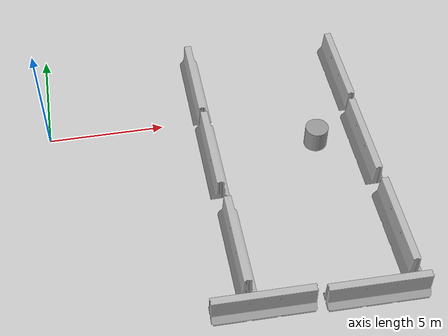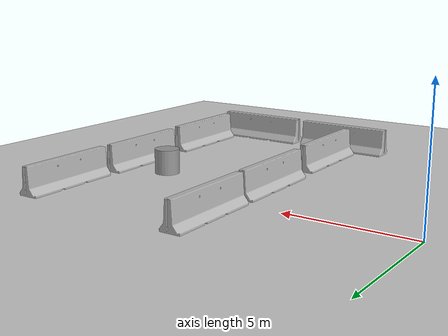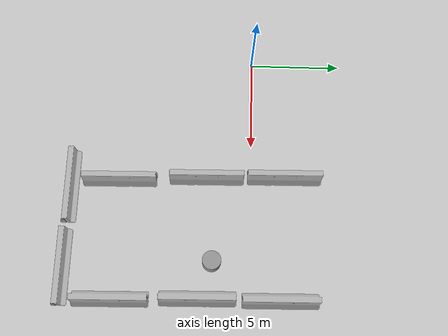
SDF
<sdf version="1.7">
 <world name="default">
  <light name="sun" type="directional">
   <pose>0 0 10 0 -0 0</pose>
   <diffuse>0.8 0.8 0.8 1</diffuse>
   <specular>0.2 0.2 0.2 1</specular>
   <attenuation>
    <range>1000</range>
    <constant>0.9</constant>
    <linear>0.01</linear>
    <quadratic>0.001</quadratic>
   </attenuation>
   <direction>-0.5 0.1 -0.9</direction>
   <spot><inner_angle>0</inner_angle><outer_angle>0</outer_angle><falloff>0</falloff></spot>
  </light>
  <model name="ground_plane">
   <static>1</static>
   <link name="link">
    <collision name="collision">
     <geometry><plane><normal>0 0 1</normal><size>100 100</size></plane></geometry>
     <surface><friction><ode><mu>100</mu><mu2>50</mu2></ode></friction></surface>
    </collision>
    <visual name="visual">
     <cast_shadows>0</cast_shadows>
     <geometry><plane><normal>0 0 1</normal><size>100 100</size></plane></geometry>
     <material>
      <script><uri>file://media/materials/scripts/gazebo.material</uri><name>Gazebo/Grey</name></script>
     </material>
    </visual>
   </link>
  </model>
  <gravity>0 0 -9.8</gravity>
  <magnetic_field>6e-06 2.3e-05 -4.2e-05</magnetic_field>
  <atmosphere type="adiabatic"/>
  <physics name="default_physics" default="0" type="ode">
   <max_step_size>0.001</max_step_size>
   <real_time_factor>1</real_time_factor>
   <real_time_update_rate>1000</real_time_update_rate>
  </physics>
  <scene><ambient>0.4 0.4 0.4 1</ambient><background>0.7 0.7 0.7 1</background><shadows>1</shadows></scene>
  <audio><device>default</device></audio>
  <spherical_coordinates>
   <surface_model>EARTH_WGS84</surface_model>
   <latitude_deg>0</latitude_deg>
   <longitude_deg>0</longitude_deg>
   <elevation>0</elevation>
   <heading_deg>0</heading_deg>
  </spherical_coordinates>
  <model name="jersey_barrier">
   <static>1</static>
   <link name="link">
    <visual name="visual">
     <geometry><mesh><uri>model://jersey_barrier/meshes/jersey_barrier.dae</uri></mesh></geometry>
    </visual>
    <collision name="upright">
     <pose>0 0 0.5715 0 -0 0</pose>
     <geometry><box><size>4.06542 0.3063 1.143</size></box></geometry>
    </collision>
    <collision name="base">
     <pose>0 0 0.032258 0 -0 0</pose>
     <geometry><box><size>4.06542 0.8107 0.064516</size></box></geometry>
    </collision>
    <collision name="base2">
     <pose>0 0 0.1 0 -0 0</pose>
     <geometry><box><size>4.06542 0.65 0.1</size></box></geometry>
    </collision>
    <collision name="base3">
     <pose>0 0 0.2 0 -0 0</pose>
     <geometry><box><size>4.06542 0.5 0.1</size></box></geometry>
    </collision>
    <collision name="left-angle">
     <pose>0 -0.224 0.2401 0.9 -0 0</pose>
     <geometry><box><size>4.06542 0.5 0.064516</size></box></geometry>
    </collision>
    <collision name="right-angle">
     <pose>0 0.224 0.2401 -0.9 0 0</pose>
     <geometry><box><size>4.06542 0.5 0.064516</size></box></geometry>
    </collision>
   </link>
   <pose>6.76324 1.84062 0 0 -0 1.58479</pose>
  </model>
  <model name="jersey_barrier_clone">
   <static>1</static>
   <link name="link">
    <visual name="visual">
     <geometry><mesh><uri>model://jersey_barrier/meshes/jersey_barrier.dae</uri></mesh></geometry>
    </visual>
    <collision name="upright">
     <pose>0 0 0.5715 0 -0 0</pose>
     <geometry><box><size>4.06542 0.3063 1.143</size></box></geometry>
    </collision>
    <collision name="base">
     <pose>0 0 0.032258 0 -0 0</pose>
     <geometry><box><size>4.06542 0.8107 0.064516</size></box></geometry>
    </collision>
    <collision name="base2">
     <pose>0 0 0.1 0 -0 0</pose>
     <geometry><box><size>4.06542 0.65 0.1</size></box></geometry>
    </collision>
    <collision name="base3">
     <pose>0 0 0.2 0 -0 0</pose>
     <geometry><box><size>4.06542 0.5 0.1</size></box></geometry>
    </collision>
    <collision name="left-angle">
     <pose>0 -0.224 0.2401 0.9 -0 0</pose>
     <geometry><box><size>4.06542 0.5 0.064516</size></box></geometry>
    </collision>
    <collision name="right-angle">
     <pose>0 0.224 0.2401 -0.9 0 0</pose>
     <geometry><box><size>4.06542 0.5 0.064516</size></box></geometry>
    </collision>
   </link>
   <pose>6.8529 -2.4129 0 0 -0 1.58479</pose>
  </model>
  <model name="jersey_barrier_clone_clone">
   <static>1</static>
   <link name="link">
    <visual name="visual">
     <geometry><mesh><uri>model://jersey_barrier/meshes/jersey_barrier.dae</uri></mesh></geometry>
    </visual>
    <collision name="upright">
     <pose>0 0 0.5715 0 -0 0</pose>
     <geometry><box><size>4.06542 0.3063 1.143</size></box></geometry>
    </collision>
    <collision name="base">
     <pose>0 0 0.032258 0 -0 0</pose>
     <geometry><box><size>4.06542 0.8107 0.064516</size></box></geometry>
    </collision>
    <collision name="base2">
     <pose>0 0 0.1 0 -0 0</pose>
     <geometry><box><size>4.06542 0.65 0.1</size></box></geometry>
    </collision>
    <collision name="base3">
     <pose>0 0 0.2 0 -0 0</pose>
     <geometry><box><size>4.06542 0.5 0.1</size></box></geometry>
    </collision>
    <collision name="left-angle">
     <pose>0 -0.224 0.2401 0.9 -0 0</pose>
     <geometry><box><size>4.06542 0.5 0.064516</size></box></geometry>
    </collision>
    <collision name="right-angle">
     <pose>0 0.224 0.2401 -0.9 0 0</pose>
     <geometry><box><size>4.06542 0.5 0.064516</size></box></geometry>
    </collision>
   </link>
   <pose>13.4872 1.63702 0 0 -0 1.58479</pose>
  </model>
  <model name="jersey_barrier_clone_clone_0">
   <static>1</static>
   <link name="link">
    <visual name="visual">
     <geometry><mesh><uri>model://jersey_barrier/meshes/jersey_barrier.dae</uri></mesh></geometry>
    </visual>
    <collision name="upright">
     <pose>0 0 0.5715 0 -0 0</pose>
     <geometry><box><size>4.06542 0.3063 1.143</size></box></geometry>
    </collision>
    <collision name="base">
     <pose>0 0 0.032258 0 -0 0</pose>
     <geometry><box><size>4.06542 0.8107 0.064516</size></box></geometry>
    </collision>
    <collision name="base2">
     <pose>0 0 0.1 0 -0 0</pose>
     <geometry><box><size>4.06542 0.65 0.1</size></box></geometry>
    </collision>
    <collision name="base3">
     <pose>0 0 0.2 0 -0 0</pose>
     <geometry><box><size>4.06542 0.5 0.1</size></box></geometry>
    </collision>
    <collision name="left-angle">
     <pose>0 -0.224 0.2401 0.9 -0 0</pose>
     <geometry><box><size>4.06542 0.5 0.064516</size></box></geometry>
    </collision>
    <collision name="right-angle">
     <pose>0 0.224 0.2401 -0.9 0 0</pose>
     <geometry><box><size>4.06542 0.5 0.064516</size></box></geometry>
    </collision>
   </link>
   <pose>13.4758 -2.72697 0 0 -0 1.58479</pose>
  </model>
  <model name="jersey_barrier_clone_clone_1">
   <static>1</static>
   <link name="link">
    <visual name="visual">
     <geometry><mesh><uri>model://jersey_barrier/meshes/jersey_barrier.dae</uri></mesh></geometry>
    </visual>
    <collision name="upright">
     <pose>0 0 0.5715 0 -0 0</pose>
     <geometry><box><size>4.06542 0.3063 1.143</size></box></geometry>
    </collision>
    <collision name="base">
     <pose>0 0 0.032258 0 -0 0</pose>
     <geometry><box><size>4.06542 0.8107 0.064516</size></box></geometry>
    </collision>
    <collision name="base2">
     <pose>0 0 0.1 0 -0 0</pose>
     <geometry><box><size>4.06542 0.65 0.1</size></box></geometry>
    </collision>
    <collision name="base3">
     <pose>0 0 0.2 0 -0 0</pose>
     <geometry><box><size>4.06542 0.5 0.1</size></box></geometry>
    </collision>
    <collision name="left-angle">
     <pose>0 -0.224 0.2401 0.9 -0 0</pose>
     <geometry><box><size>4.06542 0.5 0.064516</size></box></geometry>
    </collision>
    <collision name="right-angle">
     <pose>0 0.224 0.2401 -0.9 0 0</pose>
     <geometry><box><size>4.06542 0.5 0.064516</size></box></geometry>
    </collision>
   </link>
   <pose>13.6082 -7.31539 0 0 -0 1.58479</pose>
  </model>
  <model name="jersey_barrier_clone_clone_2">
   <static>1</static>
   <link name="link">
    <visual name="visual">
     <geometry><mesh><uri>model://jersey_barrier/meshes/jersey_barrier.dae</uri></mesh></geometry>
    </visual>
    <collision name="upright">
     <pose>0 0 0.5715 0 -0 0</pose>
     <geometry><box><size>4.06542 0.3063 1.143</size></box></geometry>
    </collision>
    <collision name="base">
     <pose>0 0 0.032258 0 -0 0</pose>
     <geometry><box><size>4.06542 0.8107 0.064516</size></box></geometry>
    </collision>
    <collision name="base2">
     <pose>0 0 0.1 0 -0 0</pose>
     <geometry><box><size>4.06542 0.65 0.1</size></box></geometry>
    </collision>
    <collision name="base3">
     <pose>0 0 0.2 0 -0 0</pose>
     <geometry><box><size>4.06542 0.5 0.1</size></box></geometry>
    </collision>
    <collision name="left-angle">
     <pose>0 -0.224 0.2401 0.9 -0 0</pose>
     <geometry><box><size>4.06542 0.5 0.064516</size></box></geometry>
    </collision>
    <collision name="right-angle">
     <pose>0 0.224 0.2401 -0.9 0 0</pose>
     <geometry><box><size>4.06542 0.5 0.064516</size></box></geometry>
    </collision>
   </link>
   <pose>7.05939 -7.17721 0 0 -0 1.58479</pose>
  </model>
  <model name="jersey_barrier_clone_clone_3">
   <static>1</static>
   <link name="link">
    <visual name="visual">
     <geometry><mesh><uri>model://jersey_barrier/meshes/jersey_barrier.dae</uri></mesh></geometry>
    </visual>
    <collision name="upright">
     <pose>0 0 0.5715 0 -0 0</pose>
     <geometry><box><size>4.06542 0.3063 1.143</size></box></geometry>
    </collision>
    <collision name="base">
     <pose>0 0 0.032258 0 -0 0</pose>
     <geometry><box><size>4.06542 0.8107 0.064516</size></box></geometry>
    </collision>
    <collision name="base2">
     <pose>0 0 0.1 0 -0 0</pose>
     <geometry><box><size>4.06542 0.65 0.1</size></box></geometry>
    </collision>
    <collision name="base3">
     <pose>0 0 0.2 0 -0 0</pose>
     <geometry><box><size>4.06542 0.5 0.1</size></box></geometry>
    </collision>
    <collision name="left-angle">
     <pose>0 -0.224 0.2401 0.9 -0 0</pose>
     <geometry><box><size>4.06542 0.5 0.064516</size></box></geometry>
    </collision>
    <collision name="right-angle">
     <pose>0 0.224 0.2401 -0.9 0 0</pose>
     <geometry><box><size>4.06542 0.5 0.064516</size></box></geometry>
    </collision>
   </link>
   <pose>12 -10 0 0 -0 3.13208</pose>
  </model>
  <model name="jersey_barrier_clone_clone_3_clone">
   <static>1</static>
   <link name="link">
    <visual name="visual">
     <geometry><mesh><uri>model://jersey_barrier/meshes/jersey_barrier.dae</uri></mesh></geometry>
    </visual>
    <collision name="upright">
     <pose>0 0 0.5715 0 -0 0</pose>
     <geometry><box><size>4.06542 0.3063 1.143</size></box></geometry>
    </collision>
    <collision name="base">
     <pose>0 0 0.032258 0 -0 0</pose>
     <geometry><box><size>4.06542 0.8107 0.064516</size></box></geometry>
    </collision>
    <collision name="base2">
     <pose>0 0 0.1 0 -0 0</pose>
     <geometry><box><size>4.06542 0.65 0.1</size></box></geometry>
    </collision>
    <collision name="base3">
     <pose>0 0 0.2 0 -0 0</pose>
     <geometry><box><size>4.06542 0.5 0.1</size></box></geometry>
    </collision>
    <collision name="left-angle">
     <pose>0 -0.224 0.2401 0.9 -0 0</pose>
     <geometry><box><size>4.06542 0.5 0.064516</size></box></geometry>
    </collision>
    <collision name="right-angle">
     <pose>0 0.224 0.2401 -0.9 0 0</pose>
     <geometry><box><size>4.06542 0.5 0.064516</size></box></geometry>
    </collision>
   </link>
   <pose>7.56593 -9.86561 0 0 -0 3.13208</pose>
  </model>
  <model name="unit_cylinder">
   <pose>11.5484 -2.02448 0.499997 3e-06 4e-06 -0</pose>
   <link name="link">
    <inertial>
     <mass>1</mass>
     <inertia><ixx>0.145833</ixx><ixy>0</ixy><ixz>0</ixz><iyy>0.145833</iyy><iyz>0</iyz><izz>0.125</izz></inertia>
    </inertial>
    <collision name="collision">
     <geometry><cylinder><radius>0.5</radius><length>1</length></cylinder></geometry>
    </collision>
    <visual name="visual">
     <geometry><cylinder><radius>0.5</radius><length>1</length></cylinder></geometry>
     <material>
      <script><name>Gazebo/Grey</name><uri>file://media/materials/scripts/gazebo.material</uri></script>
     </material>
    </visual>
   </link>
  </model>
 </world>
</sdf>
